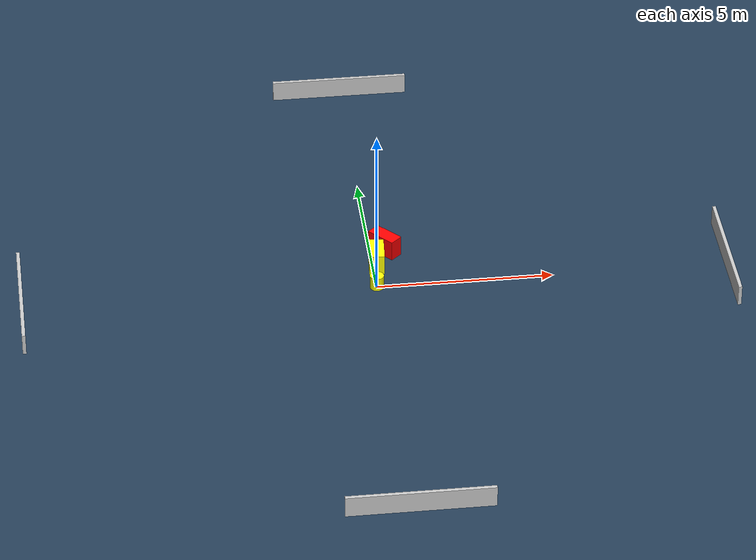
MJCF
<?xml version="1.0" ?>
<mujoco model="generated_environment">
  <option timestep="0.01" integrator="RK4" cone="elliptic"/>
  <default>
    <geom density="1"/>
  </default>
  <asset>
    <texture builtin="gradient" height="3072" name="skybox" rgb1="0.3 0.5 0.7" rgb2="0 0 0" type="skybox" width="512"/>
    <texture builtin="checker" height="300" name="groundplane" rgb1="0.2 0.3 0.4" rgb2="0.1 0.2 0.3" type="2d" width="300"/>
    <material name="groundplane" reflectance="0.2" texrepeat="5 5" texture="groundplane"/>
  </asset>
  <worldbody>
    <light dir="0 0 -1" directional="true" pos="0 0 1.5"/>
    <geom condim="3" friction="0.5 0.005 0.001" material="groundplane" name="floor" pos="0 0 0" size="0 0 0.05" type="plane"/>
    <body name="walls">
      <geom name="wall_1" condim="4" pos="-10.0 0.0 0.3" rgba="0.800000011920929 0.800000011920929 0.800000011920929 1.0" size="0.05 2.0 0.3" type="box"/>
      <geom name="wall_2" condim="4" pos="10.0 0.0 0.3" rgba="0.800000011920929 0.800000011920929 0.800000011920929 1.0" size="0.05 2.0 0.3" type="box"/>
      <geom name="wall_3" condim="4" pos="0.0 -10.0 0.3" rgba="0.800000011920929 0.800000011920929 0.800000011920929 1.0" size="2.0 0.05 0.3" type="box"/>
      <geom name="wall_4" condim="4" pos="0.0 10.0 0.3" rgba="0.800000011920929 0.800000011920929 0.800000011920929 1.0" size="2.0 0.05 0.3" type="box"/>
    </body>
    <body name="robot">
      <joint name="joint_x" type="slide" pos="0 0 0" axis="1 0 0"/>
      <joint name="joint_y" type="slide" pos="0 0 0" axis="0 1 0"/>
      <geom name="robot" type="cylinder" pos="0.0 0.0 0.2" size="0.2 0.2 0.0" mass="5.0" friction="1.0 0.005 0.0001" condim="4" rgba="1.0 1.0 0.0 1.0"/>
    </body>
    <body name="obstacle_1_movable">
      <geom name="obstacle_1_movable" condim="4" pos="0.1084845670606407 1.0394646956409932 0.3" euler="0 0 355.8341918991555" friction="0.0 0.005 0.001" rgba="1.0 1.0 0.0 1.0" size="0.21822618790272455 0.43094329041078105 0.3" type="box" mass="0.1"/>
      <joint type="free"/>
    </body>
    <body name="obstacle_2_static">
      <geom name="obstacle_2_static" condim="4" pos="0.4221054538515599 1.7042912193518567 0.3" euler="0 0 312.4512567877094" friction="0.0 0.005 0.001" rgba="1.0 0.0 0.0 1.0" size="0.4425943157193558 0.20024032778465173 0.3" type="box"/>
    </body>
  </worldbody>
  <actuator>
    <motor name="actuator_x" joint="joint_x" gear="1" ctrlrange="-1 1"/>
    <motor name="actuator_y" joint="joint_y" gear="1" ctrlrange="-1 1"/>
  </actuator>
</mujoco>
